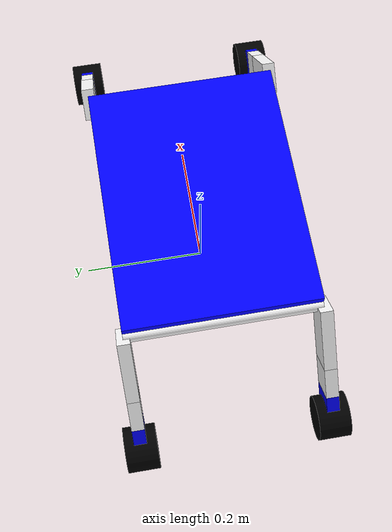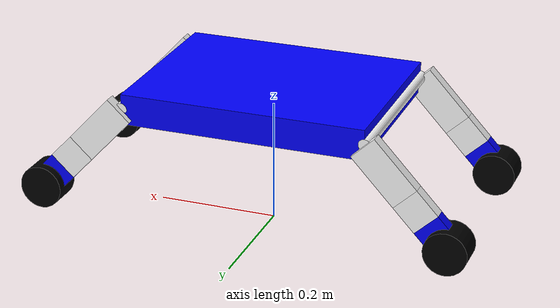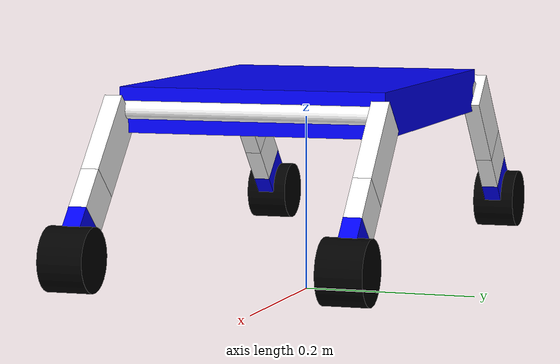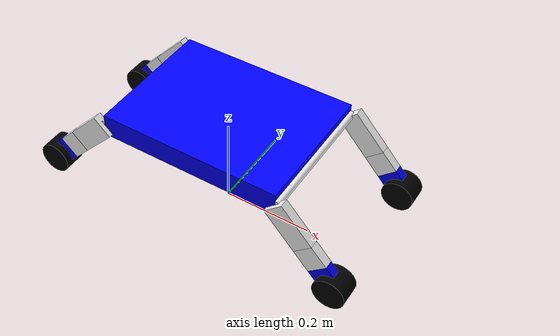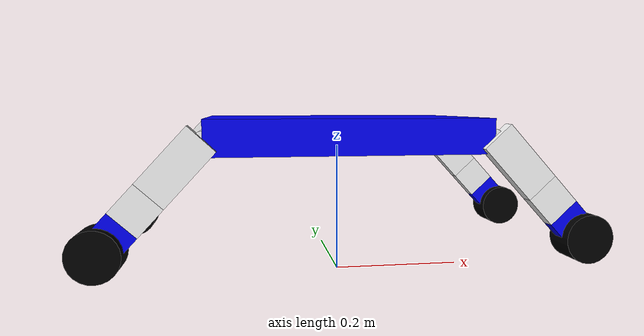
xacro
<?xml version="1.0"?>
<robot name="train_standalone"
       xmlns:sensor="http://playerstage.sourceforge.net/gazebo/xmlschema/#sensor"
       xmlns:controller="http://playerstage.sourceforge.net/gazebo/xmlschema/#controller"
       xmlns:interface="http://playerstage.sourceforge.net/gazebo/xmlschema/#interface"
       xmlns:xacro="http://ros.org/wiki/xacro">

  <!-- Defines the kobuki component tag. -->
  <xacro:include filename="$(find turtlebot_description)/urdf/train.urdf.xacro" />
  <train/>
</robot>

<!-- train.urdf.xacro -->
<robot xmlns:xacro="http://www.ros.org/wiki/xacro" name="train">
	<xacro:include filename="$(find turtlebot_description)/urdf/train/leg.urdf.xacro"/>

	<xacro:property name="width" value=".3" />
	<xacro:property name="length" value=".4" />
	<xacro:property name="leg_angle" value="0.75" />
	<xacro:property name="wheeldiam" value=".07" />
	<xacro:property name="M_PI" value="3.14159265" />

<xacro:macro name="train">
 <link name="base_footprint"/>
    <joint name="base_joint" type="fixed">
      <origin xyz="0 0 0.22" rpy="0 0 0" />
      <parent link="base_footprint"/>
      <child link="base_link" />
    </joint>
 <link name="base_link">
  <visual>
   <geometry>
    <box size="${length} ${width} 0.05" />
   </geometry>
   <material name="blue">
    <color rgba="0 0 1 1"/>
   </material>
  </visual>
 </link>

 <link name="front_axle">
  <visual>
   <geometry>
    <cylinder radius="0.01" length="${width}"/>
   </geometry>
   <origin rpy="1.57075 0 0" xyz="0.0 0.0 0.0"/>
   <material name="white">
    <color rgba="1 1 1 1"/>
   </material>
  </visual>
 </link>
 <joint name="base_to_front_axle" type="revolute">
  <axis xyz="0 -1 0"/>
  <limit effort="1000.0" lower="0" upper="6.28318" velocity="0.5"/>
  <origin rpy="0 -${leg_angle} 0" xyz="${length/2} 0 0"/>
  <parent link="base_link"/>
  <child link="front_axle"/>
 </joint>

 <link name="rear_axle">
  <visual>
   <geometry>
    <cylinder radius="0.01" length="${width}"/>
   </geometry>
   <origin rpy="1.57075 0 0" xyz="0.0 0.0 0.0"/>
   <material name="white"/>
  </visual>
 </link>
 <joint name="base_to_rear_axle" type="revolute">
  <axis xyz="0 1 0"/>
  <limit effort="1000.0" lower="0" upper="6.28318" velocity="0.5"/>
  <origin rpy="0 ${leg_angle} 0" xyz="-${length/2} 0 0"/>
  <parent link="base_link"/>
  <child link="rear_axle"/>
 </joint>

<xacro:leg prefix="front" suffix="right" leg_y="${width/2}" reflect="-1"/>
<xacro:leg prefix="front" suffix="left" leg_y="-${width/2}" reflect="-1"/>
<xacro:leg prefix="rear" suffix="right" leg_y="${width/2}" reflect="1"/>
<xacro:leg prefix="rear" suffix="left" leg_y="-${width/2}" reflect="1"/>

</xacro:macro>
</robot>

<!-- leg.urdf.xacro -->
<robot name="leg" xmlns:xacro="http://ros.org/wiki/xacro">

<xacro:macro name="leg" params="prefix suffix leg_y reflect">
 <link name="${prefix}_${suffix}_leg">
  <visual>
   <geometry>
    <box size="0.02 .05 .1"/>
   </geometry>
   <origin rpy="0 0 0" xyz="0.0 0.0 0.05"/>
   <material name="white">
    <color rgba="1 1 1 1"/>
   </material>
  </visual>
 </link>
 <joint name="base_to_${prefix}_${suffix}_leg" type="fixed">
  <axis xyz="1 0 0"/>
  <origin rpy="0 3.1415 1.57075" xyz="0 ${leg_y} 0"/>
  <parent link="${prefix}_axle"/>
  <child link="${prefix}_${suffix}_leg"/>
 </joint>

 <link name="${prefix}_${suffix}_lowleg">
  <visual>
   <geometry>
    <box size="0.02 .05 .05"/>
   </geometry>
   <origin rpy="0 0 0" xyz="0.0 0.0 0.025"/>
   <material name="white"/>
  </visual>
 </link>
 <joint name="leg_to_${prefix}_${suffix}_lowleg" type="continuous">
  <axis xyz="${reflect} 0 0"/>
  <limit effort="1000.0" velocity="0.5"/>
  <origin rpy="0 0 0" xyz="0.0 0.0 0.1"/>
  <parent link="${prefix}_${suffix}_leg"/>
  <child link="${prefix}_${suffix}_lowleg"/>
  <mimic joint="base_to_${prefix}_axle" multiplier="1" offset="${leg_angle}"/>
 </joint>

 <link name="${prefix}_${suffix}_turnleg">
  <visual>
   <geometry>
    <box size="0.02 .05 .05"/>
   </geometry>
   <origin rpy="0 0 0" xyz="0.0 0.0 0.025"/>
   <material name="blue"/>
  </visual>
 </link>
 <joint name="leg_to_${prefix}_${suffix}_turnleg" type="revolute">
  <axis xyz="0 0 1"/>
  <limit effort="1000.0" lower="-3.1415" upper="3.1415" velocity="0.5"/>
  <origin rpy="0 0 0" xyz="0.0 0.0 0.05"/>
  <parent link="${prefix}_${suffix}_lowleg"/>
  <child link="${prefix}_${suffix}_turnleg"/>
 </joint>

 <link name="${prefix}_${suffix}_wheel">
    <visual>
      <geometry>
        <cylinder length=".05" radius="${wheeldiam/2}"/>
      </geometry>
      <material name="black">
        <color rgba="0 0 0 1"/>
      </material>
    </visual>
  </link>

  <joint name="${prefix}_${suffix}_wheel_joint" type="continuous">
    <axis xyz="0 0 1"/>
    <parent link="${prefix}_${suffix}_turnleg"/>
    <child link="${prefix}_${suffix}_wheel"/>
    <origin rpy="0 1.57075 0" xyz="0 0 0.05"/>
    <limit effort="100" velocity="100"/>
    <joint_properties damping="0.0" friction="0.0"/>
  </joint>
</xacro:macro>
</robot>
